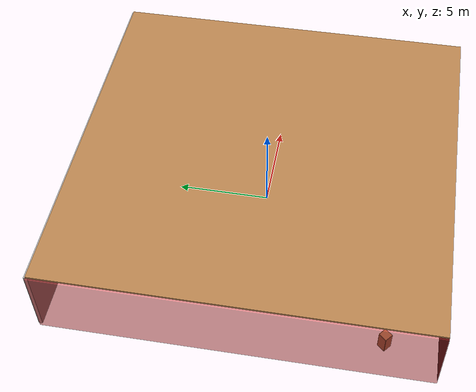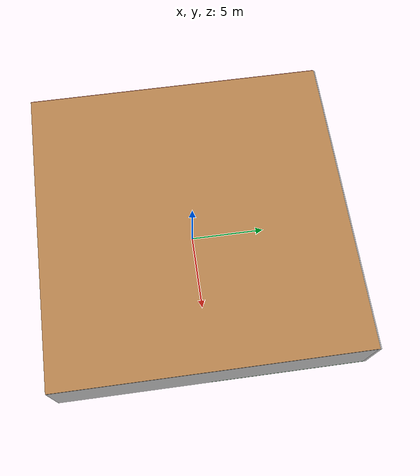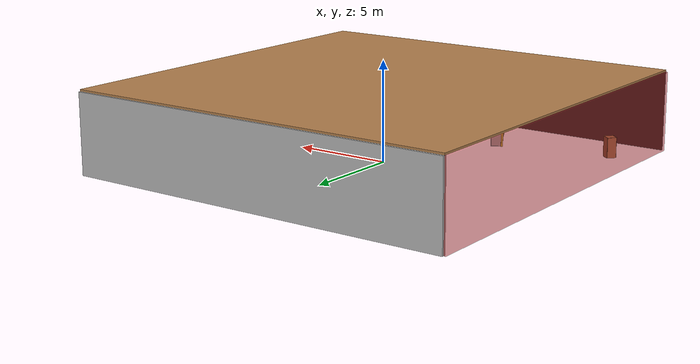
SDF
<sdf version="1.4">
 <world name="default">
  <physics type="ode">
   <max_step_size>0.001</max_step_size>
   <real_time_factor>1</real_time_factor>
   <real_time_update_rate>1000</real_time_update_rate>
   <gravity>0 0 -9.8</gravity>
  </physics>
  <scene><ambient>0.4 0.4 0.4 1</ambient><background>0.7 0.7 0.7 1</background><shadows>1</shadows></scene>
  <model name="Surrounding">
   <static>1</static>
   <link name="Ceiling">
    <collision name="Ceiling_Collision"><geometry><box><size>20 20 0.1</size></box></geometry></collision>
    <visual name="Ceiling_Visual">
     <geometry><box><size>20 20 0.1</size></box></geometry>
     <material>
      <script><uri>file://media/materials/scripts/gazebo.material</uri><name>Gazebo/WoodPallet</name></script>
     </material>
    </visual>
    <pose>0 0 4.05 0 0 0</pose>
   </link>
   <link name="Wall_South">
    <collision name="Wall_South_Collision">
     <geometry><box><size>20 0 4</size></box></geometry>
     <pose>0 0 2 0 -0 0</pose>
    </collision>
    <visual name="Wall_South_Visual">
     <pose>0 0 2 0 -0 0</pose>
     <geometry><box><size>20 0 4</size></box></geometry>
     <material>
      <script><uri>file://media/materials/scripts/gazebo.material</uri><name>Gazebo/FlatBlack</name></script>
     </material>
    </visual>
    <velocity_decay><linear>0</linear><angular>0</angular></velocity_decay>
    <pose>0 -10 0 0 -0 0</pose>
   </link>
   <link name="Wall_East">
    <collision name="Wall_21_Collision">
     <geometry><box><size>20 0 4</size></box></geometry>
     <pose>0 0 2 0 -0 0</pose>
    </collision>
    <visual name="Wall_21_Visual">
     <pose>0 0 2 0 -0 0</pose>
     <geometry><box><size>20 0 4</size></box></geometry>
     <material>
      <script><uri>file://media/materials/scripts/gazebo.material</uri><name>Gazebo/PioneerBody</name></script>
     </material>
    </visual>
    <velocity_decay><linear>0</linear><angular>0</angular></velocity_decay>
    <pose>10 0 0 0 -0 1.5708</pose>
   </link>
   <link name="Wall_North">
    <collision name="Wall_22_Collision">
     <geometry><box><size>20 0.2 4</size></box></geometry>
     <pose>0 0 2 0 -0 0</pose>
    </collision>
    <visual name="Wall_22_Visual">
     <pose>0 0 2 0 -0 0</pose>
     <geometry><box><size>20 0.2 4</size></box></geometry>
     <material>
      <script><uri>file://media/materials/scripts/gazebo.material</uri><name>Gazebo/JointAnchor</name></script>
     </material>
    </visual>
    <velocity_decay><linear>0</linear><angular>0</angular></velocity_decay>
    <pose>0 10 0 0 -0 0</pose>
   </link>
   <link name="Wall_West">
    <collision name="Wall_23_Collision">
     <geometry><box><size>20 0.2 4</size></box></geometry>
     <pose>0 0 2 0 -0 0</pose>
    </collision>
    <visual name="Wall_23_Visual">
     <pose>0 0 2 0 -0 0</pose>
     <geometry><box><size>20 0.2 4</size></box></geometry>
     <material>
      <script><uri>file://media/materials/scripts/gazebo.material</uri><name>Gazebo/RedTransparent</name></script>
     </material>
    </visual>
    <velocity_decay><linear>0</linear><angular>0</angular></velocity_decay>
    <pose>-10 0 0 0 0 -1.5708</pose>
   </link>
   <link name="Ground_link">
    <collision name="collision">
     <pose>0 0 .05 0 -0 0</pose>
     <geometry><box><size>20 20 0.1</size></box></geometry>
    </collision>
    <visual name="visual">
     <pose>0 0 .05 0 -0 0</pose>
     <geometry><box><size>20 20 0.1</size></box></geometry>
     <material>
      <script><uri>file://media/materials/scripts/gazebo.material</uri><name>Gazebo/GreenTransparent</name></script>
     </material>
    </visual>
   </link>
   <static>1</static>
  </model>
  <spherical_coordinates>
   <surface_model>EARTH_WGS84</surface_model>
   <latitude_deg>0</latitude_deg>
   <longitude_deg>0</longitude_deg>
   <elevation>0</elevation>
   <heading_deg>0</heading_deg>
  </spherical_coordinates>
  <light name="lightball_0" type="diffuse">
   <diffuse>0.8 0.8 0.8 1</diffuse>
   <specular>0.2 0.2 0.2 1</specular>
   <attenuation>
    <range>100</range>
    <constant>0.7</constant>
    <linear>0.01</linear>
    <quadratic>0.001</quadratic>
   </attenuation>
   <direction>-0.5 0.1 -0.9</direction>
   <pose>3.46365314458 3.49115903271 0.954678492284 0 0 0</pose>
  </light>
  <light name="lightball_1" type="diffuse">
   <diffuse>0.8 0.8 0.8 1</diffuse>
   <specular>0.2 0.2 0.2 1</specular>
   <attenuation>
    <range>100</range>
    <constant>0.7</constant>
    <linear>0.01</linear>
    <quadratic>0.001</quadratic>
   </attenuation>
   <direction>-0.5 0.1 -0.9</direction>
   <pose>3.16753570983 -7.16147679458 1.43147715256 0 0 0</pose>
  </light>
  <light name="lightball_2" type="diffuse">
   <diffuse>0.8 0.8 0.8 1</diffuse>
   <specular>0.2 0.2 0.2 1</specular>
   <attenuation>
    <range>100</range>
    <constant>0.7</constant>
    <linear>0.01</linear>
    <quadratic>0.001</quadratic>
   </attenuation>
   <direction>-0.5 0.1 -0.9</direction>
   <pose>-6.12002033727 -7.3663741548 3.37448401653 0 0 0</pose>
  </light>
  <light name="lightball_3" type="diffuse">
   <diffuse>0.8 0.8 0.8 1</diffuse>
   <specular>0.2 0.2 0.2 1</specular>
   <attenuation>
    <range>100</range>
    <constant>0.7</constant>
    <linear>0.01</linear>
    <quadratic>0.001</quadratic>
   </attenuation>
   <direction>-0.5 0.1 -0.9</direction>
   <pose>-2.92454217282 -4.86548522923 0.619171745557 0 0 0</pose>
  </light>
  <light name="lightball_4" type="diffuse">
   <diffuse>0.8 0.8 0.8 1</diffuse>
   <specular>0.2 0.2 0.2 1</specular>
   <attenuation>
    <range>100</range>
    <constant>0.7</constant>
    <linear>0.01</linear>
    <quadratic>0.001</quadratic>
   </attenuation>
   <direction>-0.5 0.1 -0.9</direction>
   <pose>-1.63737231682 8.087644364 2.18595072588 0 0 0</pose>
  </light>
  <light name="lightball_5" type="diffuse">
   <diffuse>0.8 0.8 0.8 1</diffuse>
   <specular>0.2 0.2 0.2 1</specular>
   <attenuation>
    <range>100</range>
    <constant>0.7</constant>
    <linear>0.01</linear>
    <quadratic>0.001</quadratic>
   </attenuation>
   <direction>-0.5 0.1 -0.9</direction>
   <pose>-1.36285052112 5.50036362256 0.684256643738 0 0 0</pose>
  </light>
  <light name="lightball_6" type="diffuse">
   <diffuse>0.8 0.8 0.8 1</diffuse>
   <specular>0.2 0.2 0.2 1</specular>
   <attenuation>
    <range>100</range>
    <constant>0.7</constant>
    <linear>0.01</linear>
    <quadratic>0.001</quadratic>
   </attenuation>
   <direction>-0.5 0.1 -0.9</direction>
   <pose>-0.162785613931 3.38558574192 2.81074512384 0 0 0</pose>
  </light>
  <light name="lightball_7" type="diffuse">
   <diffuse>0.8 0.8 0.8 1</diffuse>
   <specular>0.2 0.2 0.2 1</specular>
   <attenuation>
    <range>100</range>
    <constant>0.7</constant>
    <linear>0.01</linear>
    <quadratic>0.001</quadratic>
   </attenuation>
   <direction>-0.5 0.1 -0.9</direction>
   <pose>7.06230492738 -0.00567834416359 2.0086067177 0 0 0</pose>
  </light>
  <include><uri>model://cabinet</uri><pose>-8.43290164018 -7.29767294358 0 0 0 2.43526825894</pose></include>
  <include>
   <uri>model://construction_cone</uri>
   <pose>-5.41363209473 3.76700653849 0 0 0 0.62781559684</pose>
  </include>
  <include>
   <uri>model://robocup_3Dsim_goal</uri>
   <pose>-2.55078574247 -6.94213606275 0 0 0 0.509312505698</pose>
  </include>
  <include><uri>model://cabinet</uri><pose>2.05586508093 -4.25078756458 0 0 0 0.478207437777</pose></include>
  <include>
   <uri>model://construction_cone</uri>
   <pose>4.43535747662 -3.8572772986 0 0 0 0.0200370425902</pose>
  </include>
  <include><uri>model://table</uri><pose>3.41155251348 -2.08737890406 0 0 0 0.25870668278</pose></include>
 </world>
</sdf>

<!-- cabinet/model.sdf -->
<sdf version="1.5">
  <model name="cabinet">
    <static>true</static>
    <link name="cabinet_bottom_plate">
      <inertial>
        <pose>0 0 -1 0 0 0</pose>
        <inertia>
          <ixx>2.050000</ixx>
          <ixy>0</ixy>
          <ixz>0</ixz>
          <iyy>2.050000</iyy>
          <iyz>0</iyz>
          <izz>2.050000</izz>
        </inertia>
        <mass>25.000000</mass>
      </inertial>
      <collision name="cabinet_bottom_plate_geom">
        <pose>0 0 0.010000 0 0 0</pose>
        <geometry>
          <box>
            <size>0.450000 0.450000 0.020000</size>
          </box>
        </geometry>
      </collision>
      <visual name="cabinet_bottom_plate_geom_visual">
        <pose>0 0 0.010000 0 0 0</pose>
        <geometry>
          <box>
            <size>0.450000 0.450000 0.020000</size>
          </box>
        </geometry>
        <material>
          <script>
            <uri>model://media/materials/scripts/gazebo.material</uri>
            <name>Gazebo/Wood</name>
          </script>
        </material>
      </visual>
      <collision name="cabinet_bottom_plate_geom_cabinet_back_plate">
        <pose>0.235000 0 0.510000 0 0 0</pose>
        <geometry>
          <box>
            <size>0.020000 0.450000 1.020000</size>
          </box>
        </geometry>
      </collision>
      <visual name="cabinet_bottom_plate_geom_cabinet_back_plate_visual">
        <pose>0.235000 0 0.510000 0 0 0</pose>
        <geometry>
          <box>
            <size>0.020000 0.450000 1.020000</size>
          </box>
        </geometry>
        <material>
          <script>
            <uri>model://media/materials/scripts/gazebo.material</uri>
            <name>Gazebo/Wood</name>
          </script>
        </material>
      </visual>
      <collision name="cabinet_bottom_plate_geom_cabinet_left_plate">
        <pose>0 0.235000 0.510000 0 0 0</pose>
        <geometry>
          <box>
            <size>0.450000 0.020000 1.020000</size>
          </box>
        </geometry>
      </collision>
      <visual name="cabinet_bottom_plate_geom_cabinet_left_plate_visual">
        <pose>0 0.235000 0.510000 0 0 0</pose>
        <geometry>
          <box>
            <size>0.450000 0.020000 1.020000</size>
          </box>
        </geometry>
        <material>
          <script>
            <uri>model://media/materials/scripts/gazebo.material</uri>
            <name>Gazebo/Wood</name>
          </script>
        </material>
      </visual>
      <collision name="cabinet_bottom_plate_geom_cabinet_middle_plate">
        <pose>0 0 0.510000 0 0 0</pose>
        <geometry>
          <box>
            <size>0.450000 0.450000 0.020000</size>
          </box>
        </geometry>
      </collision>
      <visual name="cabinet_bottom_plate_geom_cabinet_middle_plate_visual">
        <pose>0 0 0.510000 0 0 0</pose>
        <geometry>
          <box>
            <size>0.450000 0.450000 0.020000</size>
          </box>
        </geometry>
        <material>
          <script>
            <uri>model://media/materials/scripts/gazebo.material</uri>
            <name>Gazebo/Wood</name>
          </script>
        </material>
      </visual>
      <collision name="cabinet_bottom_plate_geom_cabinet_right_plate">
        <pose>0 -0.235000 0.510000 0 0 0</pose>
        <geometry>
          <box>
            <size>0.450000 0.020000 1.020000</size>
          </box>
        </geometry>
      </collision>
      <visual name="cabinet_bottom_plate_geom_cabinet_right_plate_visual">
        <pose>0 -0.235000 0.510000 0 0 0</pose>
        <geometry>
          <box>
            <size>0.450000 0.020000 1.020000</size>
          </box>
        </geometry>
        <material>
          <script>
            <uri>model://media/materials/scripts/gazebo.material</uri>
            <name>Gazebo/Wood</name>
          </script>
        </material>
      </visual>
      <collision name="cabinet_bottom_plate_geom_cabinet_top_plate">
        <pose>0 0 1.010000 0 0 0</pose>
        <geometry>
          <box>
            <size>0.450000 0.450000 0.020000</size>
          </box>
        </geometry>
      </collision>
      <visual name="cabinet_bottom_plate_geom_cabinet_top_plate_visual">
        <pose>0 0 1.010000 0 0 0</pose>
        <geometry>
          <box>
            <size>0.450000 0.450000 0.020000</size>
          </box>
        </geometry>
        <material>
          <script>
            <uri>model://media/materials/scripts/gazebo.material</uri>
            <name>Gazebo/Wood</name>
          </script>
        </material>
      </visual>
    </link>
  </model>
</sdf>

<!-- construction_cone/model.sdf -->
<sdf version="1.5">
  <model name="Construction Cone">
    <link name="link">
      <collision name="collision">
        <geometry>
          <mesh>
            <scale>10 10 10</scale>
            <uri>file://isr-testbed/construction_cone/meshes/construction_cone.dae</uri>
          </mesh>
        </geometry>
      </collision>
      <visual name="visual">
        <geometry>
          <mesh>
            <scale>10 10 10</scale>
            <uri>file://isr-testbed/construction_cone/meshes/construction_cone.dae</uri>
          </mesh>
        </geometry>
      </visual>
    </link>
  </model>
</sdf>

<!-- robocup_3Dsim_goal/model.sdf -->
<sdf version="1.5">
  <model name="robocup_3d_goal">
    <static>true</static>
    <link name="left_post">
      <pose>0 1.05 0.45 0 0 0</pose>
      <collision name="collision">
        <geometry>
          <cylinder>
            <radius>0.05</radius>
            <length>0.9</length>
          </cylinder>
        </geometry>
      </collision>
      <visual name="visual">
        <geometry>
          <cylinder>
            <radius>0.05</radius>
            <length>0.9</length>
          </cylinder>
        </geometry>
        <material>
          <script>
            <uri>file://media/materials/scripts/gazebo.material</uri>
            <name>Gazebo/ZincYellow</name>
          </script>
        </material>
      </visual>
    </link>
    <link name="left_support_horiz_lower">
      <pose>0.30 1.05 0.01 0 0 0</pose>
      <collision name="collision">
        <geometry>
          <box>
            <size>0.50 0.02 0.02</size>
          </box>
        </geometry>
      </collision>
      <visual name="visual">
        <geometry>
          <box>
            <size>0.50 0.02 0.02</size>
          </box>
        </geometry>
        <material>
          <script>
            <uri>file://media/materials/scripts/gazebo.material</uri>
            <name>Gazebo/White</name>
          </script>
        </material>
      </visual>
    </link>
    <link name="left_support_horiz_upper">
      <pose>0.30 1.05 0.79 0 0 0</pose>
      <collision name="collision">
        <geometry>
          <box>
            <size>0.50 0.02 0.02</size>
          </box>
        </geometry>
      </collision>
      <visual name="visual">
        <geometry>
          <box>
            <size>0.50 0.02 0.02</size>
          </box>
        </geometry>
        <material>
          <script>
            <uri>file://media/materials/scripts/gazebo.material</uri>
            <name>Gazebo/White</name>
          </script>
        </material>
      </visual>
    </link>
    <link name="left_support_vertical">
      <pose>0.56 1.05 0.4 0 1.5708 0</pose>
      <collision name="collision">
        <geometry>
          <box>
            <size>0.80 0.02 0.02</size>
          </box>
        </geometry>
      </collision>
      <visual name="visual">
        <geometry>
          <box>
            <size>0.80 0.02 0.02</size>
          </box>
        </geometry>
        <material>
          <script>
            <uri>file://media/materials/scripts/gazebo.material</uri>
            <name>Gazebo/White</name>
          </script>
        </material>
      </visual>
    </link>
    <link name="right_support_horiz_lower">
      <pose>0.30 -1.05 0.01 0 0 0</pose>
      <collision name="collision">
        <geometry>
          <box>
            <size>0.50 0.02 0.02</size>
          </box>
        </geometry>
      </collision>
      <visual name="visual">
        <geometry>
          <box>
            <size>0.50 0.02 0.02</size>
          </box>
        </geometry>
        <material>
          <script>
            <uri>file://media/materials/scripts/gazebo.material</uri>
            <name>Gazebo/White</name>
          </script>
        </material>
      </visual>
    </link>
    <link name="right_support_horiz_upper">
      <pose>0.30 -1.05 0.79 0 0 0</pose>
      <collision name="collision">
        <geometry>
          <box>
            <size>0.50 0.02 0.02</size>
          </box>
        </geometry>
      </collision>
      <visual name="visual">
        <geometry>
          <box>
            <size>0.50 0.02 0.02</size>
          </box>
        </geometry>
        <material>
          <script>
            <uri>file://media/materials/scripts/gazebo.material</uri>
            <name>Gazebo/White</name>
          </script>
        </material>
      </visual>
    </link>
    <link name="right_support_vertical">
      <pose>0.56 -1.05 0.4 0 1.5708 0</pose>
      <collision name="collision">
        <geometry>
          <box>
            <size>0.80 0.02 0.02</size>
          </box>
        </geometry>
      </collision>
      <visual name="visual">
        <geometry>
          <box>
            <size>0.80 0.02 0.02</size>
          </box>
        </geometry>
        <material>
          <script>
            <uri>file://media/materials/scripts/gazebo.material</uri>
            <name>Gazebo/White</name>
          </script>
        </material>
      </visual>
    </link>
    <link name="center_support_horiz_lower">
      <pose>0.56 0 0.01 0 1.5708 0</pose>
      <collision name="collision">
        <geometry>
          <box>
            <size>0.02 2.08 0.02</size>
          </box>
        </geometry>
      </collision>
      <visual name="visual">
        <geometry>
          <box>
            <size>0.02 2.08 0.02</size>
          </box>
        </geometry>
        <material>
          <script>
            <uri>file://media/materials/scripts/gazebo.material</uri>
            <name>Gazebo/White</name>
          </script>
        </material>
      </visual>
    </link>
    <link name="center_support_horiz_upper">
      <pose>0.56 0 0.79 0 1.5708 0</pose>
      <collision name="collision">
        <geometry>
          <box>
            <size>0.02 2.08 0.02</size>
          </box>
        </geometry>
      </collision>
      <visual name="visual">
        <geometry>
          <box>
            <size>0.02 2.08 0.02</size>
          </box>
        </geometry>
        <material>
          <script>
            <uri>file://media/materials/scripts/gazebo.material</uri>
            <name>Gazebo/White</name>
          </script>
        </material>
      </visual>
    </link>
    <link name="right_post">
      <pose>0 -1.05 0.45 0 0 0</pose>
      <collision name="collision">
        <geometry>
          <cylinder>
            <radius>0.05</radius>
            <length>0.9</length>
          </cylinder>
        </geometry>
      </collision>
      <visual name="visual">
        <geometry>
          <cylinder>
            <radius>0.05</radius>
            <length>0.9</length>
          </cylinder>
        </geometry>
        <material>
          <script>
            <uri>file://media/materials/scripts/gazebo.material</uri>
            <name>Gazebo/ZincYellow</name>
          </script>
        </material>
      </visual>
    </link>
    <link name="crossbar">
      <pose>0 0 0.85 1.57 1.57 0</pose>
      <collision name="collision">
        <geometry>
          <cylinder>
            <radius>0.05</radius>
            <length>2.0</length>
          </cylinder>
        </geometry>
      </collision>
      <visual name="visual">
        <geometry>
          <cylinder>
            <radius>0.05</radius>
            <length>2.0</length>
          </cylinder>
        </geometry>
        <material>
          <script>
            <uri>file://media/materials/scripts/gazebo.material</uri>
            <name>Gazebo/ZincYellow</name>
          </script>
        </material>
      </visual>
    </link>
    <link name="center_net">
      <pose>0.56 0 0.40 0 0 0</pose>
      <collision name="collision">
        <geometry>
          <box>
            <size>0.01 2.1 0.80</size>
          </box>
        </geometry>
      </collision>
      <visual name="visual">
        <geometry>
          <box>
            <size>0.01 2.1 0.80</size>
          </box>
        </geometry>
        <material>
          <script>
            <uri>model://../model_source/models/robocup09_spl_field/materials/scripts/</uri>
            <uri>model://../model_source/models/robocup09_spl_field/materials/textures/</uri>
            <name>RoboCup/Net</name>
          </script>
        </material>
      </visual>
    </link>
    <link name="left_net">
      <pose>0.30 1.05 0.40 0 0 0</pose>
      <collision name="collision">
        <geometry>
          <box>
            <size>0.50 0.01 0.76</size>
          </box>
        </geometry>
      </collision>
      <visual name="visual">
        <geometry>
          <box>
            <size>0.50 0.01 0.76</size>
          </box>
        </geometry>
        <material>
          <script>
            <uri>model://../model_source/models/robocup09_spl_field/materials/scripts/</uri>
            <uri>model://../model_source/models/robocup09_spl_field/materials/textures/</uri>
            <name>RoboCup/Net</name>
          </script>
        </material>
      </visual>
    </link>
    <link name="right_net">
      <pose>0.30 -1.05 0.40 0 0 0</pose>
      <collision name="collision">
        <geometry>
          <box>
            <size>0.50 0.01 0.76</size>
          </box>
        </geometry>
      </collision>
      <visual name="visual">
        <geometry>
          <box>
            <size>0.50 0.01 0.76</size>
          </box>
        </geometry>
        <material>
          <script>
            <uri>model://../model_source/models/robocup09_spl_field/materials/scripts/</uri>
            <uri>model://../model_source/models/robocup09_spl_field/materials/textures/</uri>
            <name>RoboCup/Net</name>
          </script>
        </material>
      </visual>
    </link>
  </model>
</sdf>

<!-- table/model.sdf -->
<sdf version="1.5">
  <model name="table">
    <static>true</static>
    <link name="link">
      <collision name="surface">
        <pose>0 0 1.0 0 0 0</pose>
        <geometry>
          <box>
            <size>1.5 0.8 0.03</size>
          </box>
        </geometry>
        <surface>
          <friction>
            <ode>
              <mu>0.6</mu>
              <mu2>0.6</mu2>
            </ode>
          </friction>
        </surface>
      </collision>
      <visual name="visual1">
        <pose>0 0 1.0 0 0 0</pose>
        <geometry>
          <box>
            <size>1.5 0.8 0.03</size>
          </box>
        </geometry>
        <material>
          <script>
            <uri>model://media/materials/scripts/gazebo.material</uri>
            <name>Gazebo/Wood</name>
          </script>
        </material>
      </visual>
      <collision name="front_left_leg">
        <pose>0.68 0.38 0.5 0 0 0</pose>
        <geometry>
          <cylinder>
            <radius>0.02</radius>
            <length>1.0</length>
          </cylinder>
        </geometry>
      </collision>
      <visual name="front_left_leg">
        <pose>0.68 0.38 0.5 0 0 0</pose>
        <geometry>
          <cylinder>
            <radius>0.02</radius>
            <length>1.0</length>
          </cylinder>
        </geometry>
        <material>
          <script>
            <uri>model://media/materials/scripts/gazebo.material</uri>
            <name>Gazebo/Grey</name>
          </script>
        </material>
      </visual>
      <collision name="front_right_leg">
        <pose>0.68 -0.38 0.5 0 0 0</pose>
        <geometry>
          <cylinder>
            <radius>0.02</radius>
            <length>1.0</length>
          </cylinder>
        </geometry>
      </collision>
      <visual name="front_right_leg">
        <pose>0.68 -0.38 0.5 0 0 0</pose>
        <geometry>
          <cylinder>
            <radius>0.02</radius>
            <length>1.0</length>
          </cylinder>
        </geometry>
        <material>
          <script>
            <uri>model://media/materials/scripts/gazebo.material</uri>
            <name>Gazebo/Grey</name>
          </script>
        </material>
      </visual>
      <collision name="back_right_leg">
        <pose>-0.68 -0.38 0.5 0 0 0</pose>
        <geometry>
          <cylinder>
            <radius>0.02</radius>
            <length>1.0</length>
          </cylinder>
        </geometry>
      </collision>
      <visual name="back_right_leg">
        <pose>-0.68 -0.38 0.5 0 0 0</pose>
        <geometry>
          <cylinder>
            <radius>0.02</radius>
            <length>1.0</length>
          </cylinder>
        </geometry>
        <material>
          <script>
            <uri>model://media/materials/scripts/gazebo.material</uri>
            <name>Gazebo/Grey</name>
          </script>
        </material>
      </visual>
      <collision name="back_left_leg">
        <pose>-0.68 0.38 0.5 0 0 0</pose>
        <geometry>
          <cylinder>
            <radius>0.02</radius>
            <length>1.0</length>
          </cylinder>
        </geometry>
      </collision>
      <visual name="back_left_leg">
        <pose>-0.68 0.38 0.5 0 0 0</pose>
        <geometry>
          <cylinder>
            <radius>0.02</radius>
            <length>1.0</length>
          </cylinder>
        </geometry>
        <material>
          <script>
            <uri>model://media/materials/scripts/gazebo.material</uri>
            <name>Gazebo/Grey</name>
          </script>
        </material>
      </visual>
    </link>
  </model>
</sdf>
